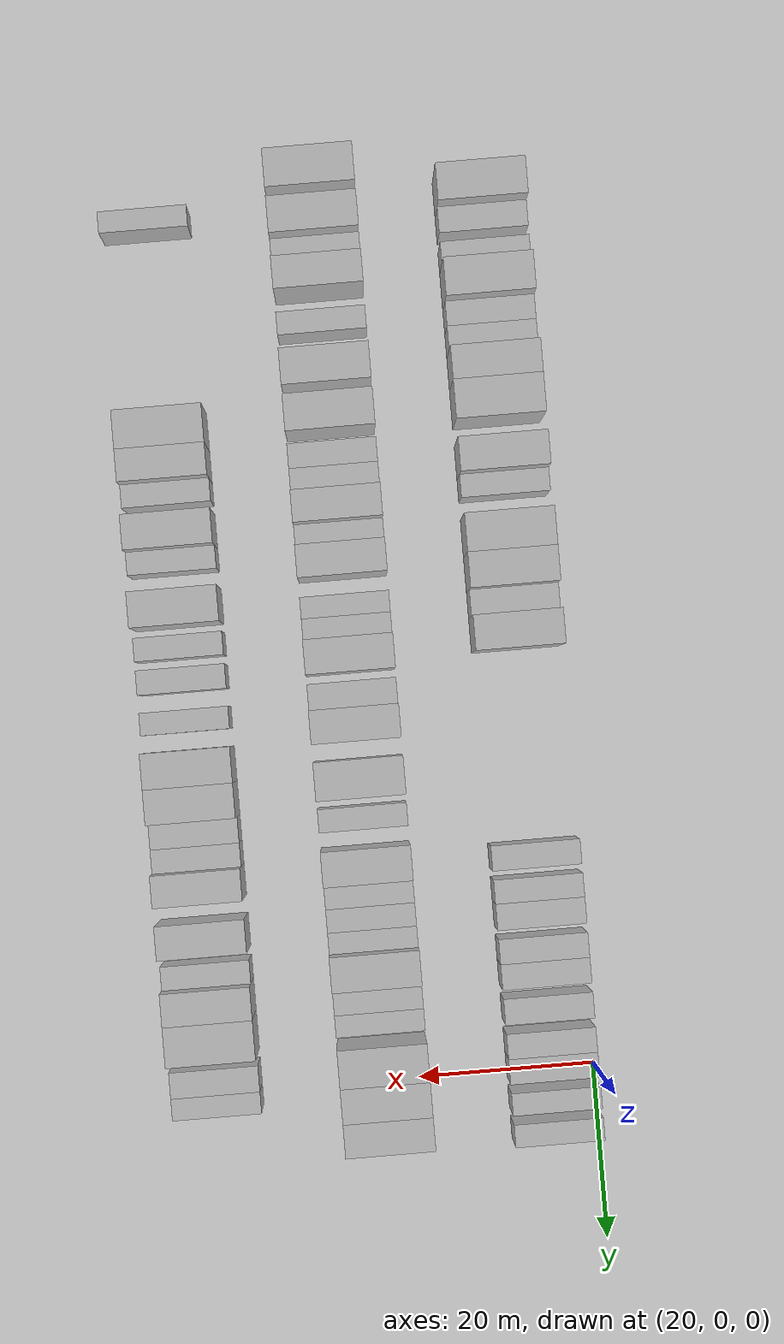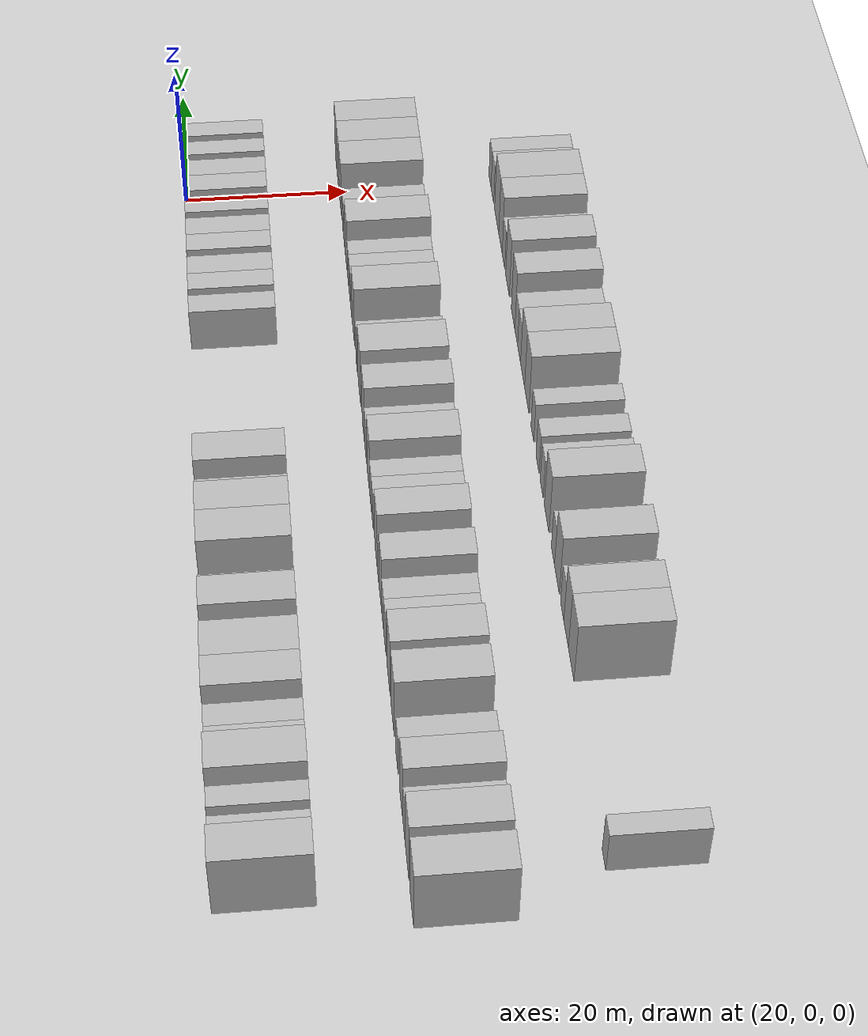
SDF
<sdf version="1.6">
 <world name="default">
  <include><name>ground_plane_1</name><uri>model://HANNAS_ground_plane</uri></include>
  <model name="building_61">
   <static>1</static>
   <pose>25.0000 -99.9922 0 0.000000 0.000000 0.000000</pose>
   <link name="link">
    <pose>0 0 4.50 0 0 0</pose>
    <collision name="collision"><geometry><box><size>10.0000 4.1372 9.0000</size></box></geometry></collision>
    <visual name="visual">
     <cast_shadows>0</cast_shadows>
     <geometry><box><size>10.0000 4.1372 9.0000</size></box></geometry>
     <material>
      <script>
       <uri>model://HANNAS_wall/materials/scripts</uri>
       <uri>model://HANNAS_wall/materials/textures</uri>
       <name>vrc/HANNAS_wall</name>
      </script>
     </material>
    </visual>
   </link>
  </model>
  <model name="building_62">
   <static>1</static>
   <pose>25.0000 -96.4658 0 0.000000 0.000000 0.000000</pose>
   <link name="link">
    <pose>0 0 3.00 0 0 0</pose>
    <collision name="collision"><geometry><box><size>10.0000 2.9156 6.0000</size></box></geometry></collision>
    <visual name="visual">
     <cast_shadows>0</cast_shadows>
     <geometry><box><size>10.0000 2.9156 6.0000</size></box></geometry>
     <material>
      <script>
       <uri>model://HANNAS_wall/materials/scripts</uri>
       <uri>model://HANNAS_wall/materials/textures</uri>
       <name>vrc/HANNAS_wall</name>
      </script>
     </material>
    </visual>
   </link>
  </model>
  <model name="building_63">
   <static>1</static>
   <pose>25.0000 -92.8031 0 0.000000 0.000000 0.000000</pose>
   <link name="link">
    <pose>0 0 3.00 0 0 0</pose>
    <collision name="collision"><geometry><box><size>10.0000 2.4098 6.0000</size></box></geometry></collision>
    <visual name="visual">
     <cast_shadows>0</cast_shadows>
     <geometry><box><size>10.0000 2.4098 6.0000</size></box></geometry>
     <material>
      <script>
       <uri>model://HANNAS_wall/materials/scripts</uri>
       <uri>model://HANNAS_wall/materials/textures</uri>
       <name>vrc/HANNAS_wall</name>
      </script>
     </material>
    </visual>
   </link>
  </model>
  <model name="building_64">
   <static>1</static>
   <pose>25.0000 -89.4570 0 0.000000 0.000000 0.000000</pose>
   <link name="link">
    <pose>0 0 4.50 0 0 0</pose>
    <collision name="collision"><geometry><box><size>10.0000 4.2825 9.0000</size></box></geometry></collision>
    <visual name="visual">
     <cast_shadows>0</cast_shadows>
     <geometry><box><size>10.0000 4.2825 9.0000</size></box></geometry>
     <material>
      <script>
       <uri>model://HANNAS_wall/materials/scripts</uri>
       <uri>model://HANNAS_wall/materials/textures</uri>
       <name>vrc/HANNAS_wall</name>
      </script>
     </material>
    </visual>
   </link>
  </model>
  <model name="building_65">
   <static>1</static>
   <pose>25.0000 -85.9227 0 0.000000 0.000000 0.000000</pose>
   <link name="link">
    <pose>0 0 3.00 0 0 0</pose>
    <collision name="collision"><geometry><box><size>10.0000 2.7860 6.0000</size></box></geometry></collision>
    <visual name="visual">
     <cast_shadows>0</cast_shadows>
     <geometry><box><size>10.0000 2.7860 6.0000</size></box></geometry>
     <material>
      <script>
       <uri>model://HANNAS_wall/materials/scripts</uri>
       <uri>model://HANNAS_wall/materials/textures</uri>
       <name>vrc/HANNAS_wall</name>
      </script>
     </material>
    </visual>
   </link>
  </model>
  <model name="building_66">
   <static>1</static>
   <pose>25.0000 -83.1837 0 0.000000 0.000000 0.000000</pose>
   <link name="link">
    <pose>0 0 3.00 0 0 0</pose>
    <collision name="collision"><geometry><box><size>10.0000 2.6921 6.0000</size></box></geometry></collision>
    <visual name="visual">
     <cast_shadows>0</cast_shadows>
     <geometry><box><size>10.0000 2.6921 6.0000</size></box></geometry>
     <material>
      <script>
       <uri>model://HANNAS_wall/materials/scripts</uri>
       <uri>model://HANNAS_wall/materials/textures</uri>
       <name>vrc/HANNAS_wall</name>
      </script>
     </material>
    </visual>
   </link>
  </model>
  <model name="building_67">
   <static>1</static>
   <pose>25.0000 -79.9527 0 0.000000 0.000000 0.000000</pose>
   <link name="link">
    <pose>0 0 4.50 0 0 0</pose>
    <collision name="collision"><geometry><box><size>10.0000 3.7701 9.0000</size></box></geometry></collision>
    <visual name="visual">
     <cast_shadows>0</cast_shadows>
     <geometry><box><size>10.0000 3.7701 9.0000</size></box></geometry>
     <material>
      <script>
       <uri>model://HANNAS_wall/materials/scripts</uri>
       <uri>model://HANNAS_wall/materials/textures</uri>
       <name>vrc/HANNAS_wall</name>
      </script>
     </material>
    </visual>
   </link>
  </model>
  <model name="building_68">
   <static>1</static>
   <pose>25.0000 -75.8776 0 0.000000 0.000000 0.000000</pose>
   <link name="link">
    <pose>0 0 4.50 0 0 0</pose>
    <collision name="collision"><geometry><box><size>10.0000 4.3800 9.0000</size></box></geometry></collision>
    <visual name="visual">
     <cast_shadows>0</cast_shadows>
     <geometry><box><size>10.0000 4.3800 9.0000</size></box></geometry>
     <material>
      <script>
       <uri>model://HANNAS_wall/materials/scripts</uri>
       <uri>model://HANNAS_wall/materials/textures</uri>
       <name>vrc/HANNAS_wall</name>
      </script>
     </material>
    </visual>
   </link>
  </model>
  <model name="building_69">
   <static>1</static>
   <pose>25.0000 -69.7725 0 0.000000 0.000000 0.000000</pose>
   <link name="link">
    <pose>0 0 4.50 0 0 0</pose>
    <collision name="collision"><geometry><box><size>10.0000 3.8302 9.0000</size></box></geometry></collision>
    <visual name="visual">
     <cast_shadows>0</cast_shadows>
     <geometry><box><size>10.0000 3.8302 9.0000</size></box></geometry>
     <material>
      <script>
       <uri>model://HANNAS_wall/materials/scripts</uri>
       <uri>model://HANNAS_wall/materials/textures</uri>
       <name>vrc/HANNAS_wall</name>
      </script>
     </material>
    </visual>
   </link>
  </model>
  <model name="building_70">
   <static>1</static>
   <pose>25.0000 -66.5474 0 0.000000 0.000000 0.000000</pose>
   <link name="link">
    <pose>0 0 3.00 0 0 0</pose>
    <collision name="collision"><geometry><box><size>10.0000 2.6201 6.0000</size></box></geometry></collision>
    <visual name="visual">
     <cast_shadows>0</cast_shadows>
     <geometry><box><size>10.0000 2.6201 6.0000</size></box></geometry>
     <material>
      <script>
       <uri>model://HANNAS_wall/materials/scripts</uri>
       <uri>model://HANNAS_wall/materials/textures</uri>
       <name>vrc/HANNAS_wall</name>
      </script>
     </material>
    </visual>
   </link>
  </model>
  <model name="building_71">
   <static>1</static>
   <pose>25.0000 -61.0674 0 0.000000 0.000000 0.000000</pose>
   <link name="link">
    <pose>0 0 4.50 0 0 0</pose>
    <collision name="collision"><geometry><box><size>10.0000 4.3399 9.0000</size></box></geometry></collision>
    <visual name="visual">
     <cast_shadows>0</cast_shadows>
     <geometry><box><size>10.0000 4.3399 9.0000</size></box></geometry>
     <material>
      <script>
       <uri>model://HANNAS_wall/materials/scripts</uri>
       <uri>model://HANNAS_wall/materials/textures</uri>
       <name>vrc/HANNAS_wall</name>
      </script>
     </material>
    </visual>
   </link>
  </model>
  <model name="building_72">
   <static>1</static>
   <pose>25.0000 -56.9074 0 0.000000 0.000000 0.000000</pose>
   <link name="link">
    <pose>0 0 4.50 0 0 0</pose>
    <collision name="collision"><geometry><box><size>10.0000 3.9801 9.0000</size></box></geometry></collision>
    <visual name="visual">
     <cast_shadows>0</cast_shadows>
     <geometry><box><size>10.0000 3.9801 9.0000</size></box></geometry>
     <material>
      <script>
       <uri>model://HANNAS_wall/materials/scripts</uri>
       <uri>model://HANNAS_wall/materials/textures</uri>
       <name>vrc/HANNAS_wall</name>
      </script>
     </material>
    </visual>
   </link>
  </model>
  <model name="building_73">
   <static>1</static>
   <pose>25.0000 -53.4187 0 0.000000 0.000000 0.000000</pose>
   <link name="link">
    <pose>0 0 3.00 0 0 0</pose>
    <collision name="collision"><geometry><box><size>10.0000 2.9973 6.0000</size></box></geometry></collision>
    <visual name="visual">
     <cast_shadows>0</cast_shadows>
     <geometry><box><size>10.0000 2.9973 6.0000</size></box></geometry>
     <material>
      <script>
       <uri>model://HANNAS_wall/materials/scripts</uri>
       <uri>model://HANNAS_wall/materials/textures</uri>
       <name>vrc/HANNAS_wall</name>
      </script>
     </material>
    </visual>
   </link>
  </model>
  <model name="building_74">
   <static>1</static>
   <pose>25.0000 -49.9372 0 0.000000 0.000000 0.000000</pose>
   <link name="link">
    <pose>0 0 4.50 0 0 0</pose>
    <collision name="collision"><geometry><box><size>10.0000 3.9659 9.0000</size></box></geometry></collision>
    <visual name="visual">
     <cast_shadows>0</cast_shadows>
     <geometry><box><size>10.0000 3.9659 9.0000</size></box></geometry>
     <material>
      <script>
       <uri>model://HANNAS_wall/materials/scripts</uri>
       <uri>model://HANNAS_wall/materials/textures</uri>
       <name>vrc/HANNAS_wall</name>
      </script>
     </material>
    </visual>
   </link>
  </model>
  <model name="building_75">
   <static>1</static>
   <pose>25.0000 -24.7141 0 0.000000 0.000000 0.000000</pose>
   <link name="link">
    <pose>0 0 3.00 0 0 0</pose>
    <collision name="collision"><geometry><box><size>10.0000 2.8267 6.0000</size></box></geometry></collision>
    <visual name="visual">
     <cast_shadows>0</cast_shadows>
     <geometry><box><size>10.0000 2.8267 6.0000</size></box></geometry>
     <material>
      <script>
       <uri>model://HANNAS_wall/materials/scripts</uri>
       <uri>model://HANNAS_wall/materials/textures</uri>
       <name>vrc/HANNAS_wall</name>
      </script>
     </material>
    </visual>
   </link>
  </model>
  <model name="building_76">
   <static>1</static>
   <pose>25.0000 -20.9443 0 0.000000 0.000000 0.000000</pose>
   <link name="link">
    <pose>0 0 3.00 0 0 0</pose>
    <collision name="collision"><geometry><box><size>10.0000 2.7129 6.0000</size></box></geometry></collision>
    <visual name="visual">
     <cast_shadows>0</cast_shadows>
     <geometry><box><size>10.0000 2.7129 6.0000</size></box></geometry>
     <material>
      <script>
       <uri>model://HANNAS_wall/materials/scripts</uri>
       <uri>model://HANNAS_wall/materials/textures</uri>
       <name>vrc/HANNAS_wall</name>
      </script>
     </material>
    </visual>
   </link>
  </model>
  <model name="building_77">
   <static>1</static>
   <pose>25.0000 -18.1075 0 0.000000 0.000000 0.000000</pose>
   <link name="link">
    <pose>0 0 3.00 0 0 0</pose>
    <collision name="collision"><geometry><box><size>10.0000 2.9607 6.0000</size></box></geometry></collision>
    <visual name="visual">
     <cast_shadows>0</cast_shadows>
     <geometry><box><size>10.0000 2.9607 6.0000</size></box></geometry>
     <material>
      <script>
       <uri>model://HANNAS_wall/materials/scripts</uri>
       <uri>model://HANNAS_wall/materials/textures</uri>
       <name>vrc/HANNAS_wall</name>
      </script>
     </material>
    </visual>
   </link>
  </model>
  <model name="building_78">
   <static>1</static>
   <pose>25.0000 -14.2135 0 0.000000 0.000000 0.000000</pose>
   <link name="link">
    <pose>0 0 3.00 0 0 0</pose>
    <collision name="collision"><geometry><box><size>10.0000 2.8274 6.0000</size></box></geometry></collision>
    <visual name="visual">
     <cast_shadows>0</cast_shadows>
     <geometry><box><size>10.0000 2.8274 6.0000</size></box></geometry>
     <material>
      <script>
       <uri>model://HANNAS_wall/materials/scripts</uri>
       <uri>model://HANNAS_wall/materials/textures</uri>
       <name>vrc/HANNAS_wall</name>
      </script>
     </material>
    </visual>
   </link>
  </model>
  <model name="building_79">
   <static>1</static>
   <pose>25.0000 -11.3619 0 0.000000 0.000000 0.000000</pose>
   <link name="link">
    <pose>0 0 3.00 0 0 0</pose>
    <collision name="collision"><geometry><box><size>10.0000 2.8756 6.0000</size></box></geometry></collision>
    <visual name="visual">
     <cast_shadows>0</cast_shadows>
     <geometry><box><size>10.0000 2.8756 6.0000</size></box></geometry>
     <material>
      <script>
       <uri>model://HANNAS_wall/materials/scripts</uri>
       <uri>model://HANNAS_wall/materials/textures</uri>
       <name>vrc/HANNAS_wall</name>
      </script>
     </material>
    </visual>
   </link>
  </model>
  <model name="building_80">
   <static>1</static>
   <pose>25.0000 -7.4598 0 0.000000 0.000000 0.000000</pose>
   <link name="link">
    <pose>0 0 3.00 0 0 0</pose>
    <collision name="collision"><geometry><box><size>10.0000 2.9285 6.0000</size></box></geometry></collision>
    <visual name="visual">
     <cast_shadows>0</cast_shadows>
     <geometry><box><size>10.0000 2.9285 6.0000</size></box></geometry>
     <material>
      <script>
       <uri>model://HANNAS_wall/materials/scripts</uri>
       <uri>model://HANNAS_wall/materials/textures</uri>
       <name>vrc/HANNAS_wall</name>
      </script>
     </material>
    </visual>
   </link>
  </model>
  <model name="building_81">
   <static>1</static>
   <pose>25.0000 -3.5816 0 0.000000 0.000000 0.000000</pose>
   <link name="link">
    <pose>0 0 3.00 0 0 0</pose>
    <collision name="collision"><geometry><box><size>10.0000 2.8280 6.0000</size></box></geometry></collision>
    <visual name="visual">
     <cast_shadows>0</cast_shadows>
     <geometry><box><size>10.0000 2.8280 6.0000</size></box></geometry>
     <material>
      <script>
       <uri>model://HANNAS_wall/materials/scripts</uri>
       <uri>model://HANNAS_wall/materials/textures</uri>
       <name>vrc/HANNAS_wall</name>
      </script>
     </material>
    </visual>
   </link>
  </model>
  <model name="building_82">
   <static>1</static>
   <pose>25.0000 -0.7531 0 0.000000 0.000000 0.000000</pose>
   <link name="link">
    <pose>0 0 3.00 0 0 0</pose>
    <collision name="collision"><geometry><box><size>10.0000 2.8289 6.0000</size></box></geometry></collision>
    <visual name="visual">
     <cast_shadows>0</cast_shadows>
     <geometry><box><size>10.0000 2.8289 6.0000</size></box></geometry>
     <material>
      <script>
       <uri>model://HANNAS_wall/materials/scripts</uri>
       <uri>model://HANNAS_wall/materials/textures</uri>
       <name>vrc/HANNAS_wall</name>
      </script>
     </material>
    </visual>
   </link>
  </model>
  <model name="building_83">
   <static>1</static>
   <pose>25.0000 2.9160 0 0.000000 0.000000 0.000000</pose>
   <link name="link">
    <pose>0 0 3.00 0 0 0</pose>
    <collision name="collision"><geometry><box><size>10.0000 2.5093 6.0000</size></box></geometry></collision>
    <visual name="visual">
     <cast_shadows>0</cast_shadows>
     <geometry><box><size>10.0000 2.5093 6.0000</size></box></geometry>
     <material>
      <script>
       <uri>model://HANNAS_wall/materials/scripts</uri>
       <uri>model://HANNAS_wall/materials/textures</uri>
       <name>vrc/HANNAS_wall</name>
      </script>
     </material>
    </visual>
   </link>
  </model>
  <model name="building_84">
   <static>1</static>
   <pose>25.0000 6.4420 0 0.000000 0.000000 0.000000</pose>
   <link name="link">
    <pose>0 0 3.00 0 0 0</pose>
    <collision name="collision"><geometry><box><size>10.0000 2.5426 6.0000</size></box></geometry></collision>
    <visual name="visual">
     <cast_shadows>0</cast_shadows>
     <geometry><box><size>10.0000 2.5426 6.0000</size></box></geometry>
     <material>
      <script>
       <uri>model://HANNAS_wall/materials/scripts</uri>
       <uri>model://HANNAS_wall/materials/textures</uri>
       <name>vrc/HANNAS_wall</name>
      </script>
     </material>
    </visual>
   </link>
  </model>
  <model name="building_235">
   <static>1</static>
   <pose>44.0000 -103.1138 0 0.000000 0.000000 0.000000</pose>
   <link name="link">
    <pose>0 0 4.50 0 0 0</pose>
    <collision name="collision"><geometry><box><size>10.0000 4.2926 9.0000</size></box></geometry></collision>
    <visual name="visual">
     <cast_shadows>0</cast_shadows>
     <geometry><box><size>10.0000 4.2926 9.0000</size></box></geometry>
     <material>
      <script>
       <uri>model://HANNAS_wall/materials/scripts</uri>
       <uri>model://HANNAS_wall/materials/textures</uri>
       <name>vrc/HANNAS_wall</name>
      </script>
     </material>
    </visual>
   </link>
  </model>
  <model name="building_236">
   <static>1</static>
   <pose>44.0000 -97.9394 0 0.000000 0.000000 0.000000</pose>
   <link name="link">
    <pose>0 0 4.50 0 0 0</pose>
    <collision name="collision"><geometry><box><size>10.0000 4.0561 9.0000</size></box></geometry></collision>
    <visual name="visual">
     <cast_shadows>0</cast_shadows>
     <geometry><box><size>10.0000 4.0561 9.0000</size></box></geometry>
     <material>
      <script>
       <uri>model://HANNAS_wall/materials/scripts</uri>
       <uri>model://HANNAS_wall/materials/textures</uri>
       <name>vrc/HANNAS_wall</name>
      </script>
     </material>
    </visual>
   </link>
  </model>
  <model name="building_237">
   <static>1</static>
   <pose>44.0000 -94.6155 0 0.000000 0.000000 0.000000</pose>
   <link name="link">
    <pose>0 0 3.00 0 0 0</pose>
    <collision name="collision"><geometry><box><size>10.0000 2.5917 6.0000</size></box></geometry></collision>
    <visual name="visual">
     <cast_shadows>0</cast_shadows>
     <geometry><box><size>10.0000 2.5917 6.0000</size></box></geometry>
     <material>
      <script>
       <uri>model://HANNAS_wall/materials/scripts</uri>
       <uri>model://HANNAS_wall/materials/textures</uri>
       <name>vrc/HANNAS_wall</name>
      </script>
     </material>
    </visual>
   </link>
  </model>
  <model name="building_238">
   <static>1</static>
   <pose>44.0000 -91.5014 0 0.000000 0.000000 0.000000</pose>
   <link name="link">
    <pose>0 0 4.50 0 0 0</pose>
    <collision name="collision"><geometry><box><size>10.0000 3.6364 9.0000</size></box></geometry></collision>
    <visual name="visual">
     <cast_shadows>0</cast_shadows>
     <geometry><box><size>10.0000 3.6364 9.0000</size></box></geometry>
     <material>
      <script>
       <uri>model://HANNAS_wall/materials/scripts</uri>
       <uri>model://HANNAS_wall/materials/textures</uri>
       <name>vrc/HANNAS_wall</name>
      </script>
     </material>
    </visual>
   </link>
  </model>
  <model name="building_239">
   <static>1</static>
   <pose>44.0000 -86.3907 0 0.000000 0.000000 0.000000</pose>
   <link name="link">
    <pose>0 0 3.00 0 0 0</pose>
    <collision name="collision"><geometry><box><size>10.0000 2.5850 6.0000</size></box></geometry></collision>
    <visual name="visual">
     <cast_shadows>0</cast_shadows>
     <geometry><box><size>10.0000 2.5850 6.0000</size></box></geometry>
     <material>
      <script>
       <uri>model://HANNAS_wall/materials/scripts</uri>
       <uri>model://HANNAS_wall/materials/textures</uri>
       <name>vrc/HANNAS_wall</name>
      </script>
     </material>
    </visual>
   </link>
  </model>
  <model name="building_240">
   <static>1</static>
   <pose>44.0000 -81.0617 0 0.000000 0.000000 0.000000</pose>
   <link name="link">
    <pose>0 0 4.50 0 0 0</pose>
    <collision name="collision"><geometry><box><size>10.0000 4.0732 9.0000</size></box></geometry></collision>
    <visual name="visual">
     <cast_shadows>0</cast_shadows>
     <geometry><box><size>10.0000 4.0732 9.0000</size></box></geometry>
     <material>
      <script>
       <uri>model://HANNAS_wall/materials/scripts</uri>
       <uri>model://HANNAS_wall/materials/textures</uri>
       <name>vrc/HANNAS_wall</name>
      </script>
     </material>
    </visual>
   </link>
  </model>
  <model name="building_241">
   <static>1</static>
   <pose>44.0000 -75.9547 0 0.000000 0.000000 0.000000</pose>
   <link name="link">
    <pose>0 0 4.50 0 0 0</pose>
    <collision name="collision"><geometry><box><size>10.0000 4.1408 9.0000</size></box></geometry></collision>
    <visual name="visual">
     <cast_shadows>0</cast_shadows>
     <geometry><box><size>10.0000 4.1408 9.0000</size></box></geometry>
     <material>
      <script>
       <uri>model://HANNAS_wall/materials/scripts</uri>
       <uri>model://HANNAS_wall/materials/textures</uri>
       <name>vrc/HANNAS_wall</name>
      </script>
     </material>
    </visual>
   </link>
  </model>
  <model name="building_242">
   <static>1</static>
   <pose>44.0000 -71.4870 0 0.000000 0.000000 0.000000</pose>
   <link name="link">
    <pose>0 0 3.00 0 0 0</pose>
    <collision name="collision"><geometry><box><size>10.0000 2.7945 6.0000</size></box></geometry></collision>
    <visual name="visual">
     <cast_shadows>0</cast_shadows>
     <geometry><box><size>10.0000 2.7945 6.0000</size></box></geometry>
     <material>
      <script>
       <uri>model://HANNAS_wall/materials/scripts</uri>
       <uri>model://HANNAS_wall/materials/textures</uri>
       <name>vrc/HANNAS_wall</name>
      </script>
     </material>
    </visual>
   </link>
  </model>
  <model name="building_243">
   <static>1</static>
   <pose>44.0000 -68.7344 0 0.000000 0.000000 0.000000</pose>
   <link name="link">
    <pose>0 0 3.00 0 0 0</pose>
    <collision name="collision"><geometry><box><size>10.0000 2.7108 6.0000</size></box></geometry></collision>
    <visual name="visual">
     <cast_shadows>0</cast_shadows>
     <geometry><box><size>10.0000 2.7108 6.0000</size></box></geometry>
     <material>
      <script>
       <uri>model://HANNAS_wall/materials/scripts</uri>
       <uri>model://HANNAS_wall/materials/textures</uri>
       <name>vrc/HANNAS_wall</name>
      </script>
     </material>
    </visual>
   </link>
  </model>
  <model name="building_244">
   <static>1</static>
   <pose>44.0000 -65.5699 0 0.000000 0.000000 0.000000</pose>
   <link name="link">
    <pose>0 0 4.50 0 0 0</pose>
    <collision name="collision"><geometry><box><size>10.0000 3.6183 9.0000</size></box></geometry></collision>
    <visual name="visual">
     <cast_shadows>0</cast_shadows>
     <geometry><box><size>10.0000 3.6183 9.0000</size></box></geometry>
     <material>
      <script>
       <uri>model://HANNAS_wall/materials/scripts</uri>
       <uri>model://HANNAS_wall/materials/textures</uri>
       <name>vrc/HANNAS_wall</name>
      </script>
     </material>
    </visual>
   </link>
  </model>
  <model name="building_245">
   <static>1</static>
   <pose>44.0000 -62.5267 0 0.000000 0.000000 0.000000</pose>
   <link name="link">
    <pose>0 0 3.00 0 0 0</pose>
    <collision name="collision"><geometry><box><size>10.0000 2.4680 6.0000</size></box></geometry></collision>
    <visual name="visual">
     <cast_shadows>0</cast_shadows>
     <geometry><box><size>10.0000 2.4680 6.0000</size></box></geometry>
     <material>
      <script>
       <uri>model://HANNAS_wall/materials/scripts</uri>
       <uri>model://HANNAS_wall/materials/textures</uri>
       <name>vrc/HANNAS_wall</name>
      </script>
     </material>
    </visual>
   </link>
  </model>
  <model name="building_246">
   <static>1</static>
   <pose>44.0000 -59.4521 0 0.000000 0.000000 0.000000</pose>
   <link name="link">
    <pose>0 0 4.50 0 0 0</pose>
    <collision name="collision"><geometry><box><size>10.0000 3.6812 9.0000</size></box></geometry></collision>
    <visual name="visual">
     <cast_shadows>0</cast_shadows>
     <geometry><box><size>10.0000 3.6812 9.0000</size></box></geometry>
     <material>
      <script>
       <uri>model://HANNAS_wall/materials/scripts</uri>
       <uri>model://HANNAS_wall/materials/textures</uri>
       <name>vrc/HANNAS_wall</name>
      </script>
     </material>
    </visual>
   </link>
  </model>
  <model name="building_247">
   <static>1</static>
   <pose>44.0000 -54.3995 0 0.000000 0.000000 0.000000</pose>
   <link name="link">
    <pose>0 0 3.00 0 0 0</pose>
    <collision name="collision"><geometry><box><size>10.0000 2.4240 6.0000</size></box></geometry></collision>
    <visual name="visual">
     <cast_shadows>0</cast_shadows>
     <geometry><box><size>10.0000 2.4240 6.0000</size></box></geometry>
     <material>
      <script>
       <uri>model://HANNAS_wall/materials/scripts</uri>
       <uri>model://HANNAS_wall/materials/textures</uri>
       <name>vrc/HANNAS_wall</name>
      </script>
     </material>
    </visual>
   </link>
  </model>
  <model name="building_248">
   <static>1</static>
   <pose>44.0000 -51.9648 0 0.000000 0.000000 0.000000</pose>
   <link name="link">
    <pose>0 0 3.00 0 0 0</pose>
    <collision name="collision"><geometry><box><size>10.0000 2.4454 6.0000</size></box></geometry></collision>
    <visual name="visual">
     <cast_shadows>0</cast_shadows>
     <geometry><box><size>10.0000 2.4454 6.0000</size></box></geometry>
     <material>
      <script>
       <uri>model://HANNAS_wall/materials/scripts</uri>
       <uri>model://HANNAS_wall/materials/textures</uri>
       <name>vrc/HANNAS_wall</name>
      </script>
     </material>
    </visual>
   </link>
  </model>
  <model name="building_249">
   <static>1</static>
   <pose>44.0000 -48.7919 0 0.000000 0.000000 0.000000</pose>
   <link name="link">
    <pose>0 0 4.50 0 0 0</pose>
    <collision name="collision"><geometry><box><size>10.0000 3.9004 9.0000</size></box></geometry></collision>
    <visual name="visual">
     <cast_shadows>0</cast_shadows>
     <geometry><box><size>10.0000 3.9004 9.0000</size></box></geometry>
     <material>
      <script>
       <uri>model://HANNAS_wall/materials/scripts</uri>
       <uri>model://HANNAS_wall/materials/textures</uri>
       <name>vrc/HANNAS_wall</name>
      </script>
     </material>
    </visual>
   </link>
  </model>
  <model name="building_250">
   <static>1</static>
   <pose>44.0000 -44.3655 0 0.000000 0.000000 0.000000</pose>
   <link name="link">
    <pose>0 0 3.00 0 0 0</pose>
    <collision name="collision"><geometry><box><size>10.0000 2.9524 6.0000</size></box></geometry></collision>
    <visual name="visual">
     <cast_shadows>0</cast_shadows>
     <geometry><box><size>10.0000 2.9524 6.0000</size></box></geometry>
     <material>
      <script>
       <uri>model://HANNAS_wall/materials/scripts</uri>
       <uri>model://HANNAS_wall/materials/textures</uri>
       <name>vrc/HANNAS_wall</name>
      </script>
     </material>
    </visual>
   </link>
  </model>
  <model name="building_251">
   <static>1</static>
   <pose>44.0000 -40.9988 0 0.000000 0.000000 0.000000</pose>
   <link name="link">
    <pose>0 0 4.50 0 0 0</pose>
    <collision name="collision"><geometry><box><size>10.0000 3.7809 9.0000</size></box></geometry></collision>
    <visual name="visual">
     <cast_shadows>0</cast_shadows>
     <geometry><box><size>10.0000 3.7809 9.0000</size></box></geometry>
     <material>
      <script>
       <uri>model://HANNAS_wall/materials/scripts</uri>
       <uri>model://HANNAS_wall/materials/textures</uri>
       <name>vrc/HANNAS_wall</name>
      </script>
     </material>
    </visual>
   </link>
  </model>
  <model name="building_252">
   <static>1</static>
   <pose>44.0000 -34.9463 0 0.000000 0.000000 0.000000</pose>
   <link name="link">
    <pose>0 0 4.50 0 0 0</pose>
    <collision name="collision"><geometry><box><size>10.0000 4.3242 9.0000</size></box></geometry></collision>
    <visual name="visual">
     <cast_shadows>0</cast_shadows>
     <geometry><box><size>10.0000 4.3242 9.0000</size></box></geometry>
     <material>
      <script>
       <uri>model://HANNAS_wall/materials/scripts</uri>
       <uri>model://HANNAS_wall/materials/textures</uri>
       <name>vrc/HANNAS_wall</name>
      </script>
     </material>
    </visual>
   </link>
  </model>
  <model name="building_253">
   <static>1</static>
   <pose>44.0000 -30.4760 0 0.000000 0.000000 0.000000</pose>
   <link name="link">
    <pose>0 0 3.00 0 0 0</pose>
    <collision name="collision"><geometry><box><size>10.0000 2.6163 6.0000</size></box></geometry></collision>
    <visual name="visual">
     <cast_shadows>0</cast_shadows>
     <geometry><box><size>10.0000 2.6163 6.0000</size></box></geometry>
     <material>
      <script>
       <uri>model://HANNAS_wall/materials/scripts</uri>
       <uri>model://HANNAS_wall/materials/textures</uri>
       <name>vrc/HANNAS_wall</name>
      </script>
     </material>
    </visual>
   </link>
  </model>
  <model name="building_254">
   <static>1</static>
   <pose>44.0000 -25.1938 0 0.000000 0.000000 0.000000</pose>
   <link name="link">
    <pose>0 0 4.50 0 0 0</pose>
    <collision name="collision"><geometry><box><size>10.0000 3.9481 9.0000</size></box></geometry></collision>
    <visual name="visual">
     <cast_shadows>0</cast_shadows>
     <geometry><box><size>10.0000 3.9481 9.0000</size></box></geometry>
     <material>
      <script>
       <uri>model://HANNAS_wall/materials/scripts</uri>
       <uri>model://HANNAS_wall/materials/textures</uri>
       <name>vrc/HANNAS_wall</name>
      </script>
     </material>
    </visual>
   </link>
  </model>
  <model name="building_255">
   <static>1</static>
   <pose>44.0000 -21.8793 0 0.000000 0.000000 0.000000</pose>
   <link name="link">
    <pose>0 0 3.00 0 0 0</pose>
    <collision name="collision"><geometry><box><size>10.0000 2.6810 6.0000</size></box></geometry></collision>
    <visual name="visual">
     <cast_shadows>0</cast_shadows>
     <geometry><box><size>10.0000 2.6810 6.0000</size></box></geometry>
     <material>
      <script>
       <uri>model://HANNAS_wall/materials/scripts</uri>
       <uri>model://HANNAS_wall/materials/textures</uri>
       <name>vrc/HANNAS_wall</name>
      </script>
     </material>
    </visual>
   </link>
  </model>
  <model name="building_256">
   <static>1</static>
   <pose>44.0000 -19.2261 0 0.000000 0.000000 0.000000</pose>
   <link name="link">
    <pose>0 0 3.00 0 0 0</pose>
    <collision name="collision"><geometry><box><size>10.0000 2.6255 6.0000</size></box></geometry></collision>
    <visual name="visual">
     <cast_shadows>0</cast_shadows>
     <geometry><box><size>10.0000 2.6255 6.0000</size></box></geometry>
     <material>
      <script>
       <uri>model://HANNAS_wall/materials/scripts</uri>
       <uri>model://HANNAS_wall/materials/textures</uri>
       <name>vrc/HANNAS_wall</name>
      </script>
     </material>
    </visual>
   </link>
  </model>
  <model name="building_257">
   <static>1</static>
   <pose>44.0000 -16.7119 0 0.000000 0.000000 0.000000</pose>
   <link name="link">
    <pose>0 0 3.00 0 0 0</pose>
    <collision name="collision"><geometry><box><size>10.0000 2.4028 6.0000</size></box></geometry></collision>
    <visual name="visual">
     <cast_shadows>0</cast_shadows>
     <geometry><box><size>10.0000 2.4028 6.0000</size></box></geometry>
     <material>
      <script>
       <uri>model://HANNAS_wall/materials/scripts</uri>
       <uri>model://HANNAS_wall/materials/textures</uri>
       <name>vrc/HANNAS_wall</name>
      </script>
     </material>
    </visual>
   </link>
  </model>
  <model name="building_258">
   <static>1</static>
   <pose>44.0000 -13.5210 0 0.000000 0.000000 0.000000</pose>
   <link name="link">
    <pose>0 0 4.50 0 0 0</pose>
    <collision name="collision"><geometry><box><size>10.0000 3.9791 9.0000</size></box></geometry></collision>
    <visual name="visual">
     <cast_shadows>0</cast_shadows>
     <geometry><box><size>10.0000 3.9791 9.0000</size></box></geometry>
     <material>
      <script>
       <uri>model://HANNAS_wall/materials/scripts</uri>
       <uri>model://HANNAS_wall/materials/textures</uri>
       <name>vrc/HANNAS_wall</name>
      </script>
     </material>
    </visual>
   </link>
  </model>
  <model name="building_259">
   <static>1</static>
   <pose>44.0000 -10.0877 0 0.000000 0.000000 0.000000</pose>
   <link name="link">
    <pose>0 0 3.00 0 0 0</pose>
    <collision name="collision"><geometry><box><size>10.0000 2.8873 6.0000</size></box></geometry></collision>
    <visual name="visual">
     <cast_shadows>0</cast_shadows>
     <geometry><box><size>10.0000 2.8873 6.0000</size></box></geometry>
     <material>
      <script>
       <uri>model://HANNAS_wall/materials/scripts</uri>
       <uri>model://HANNAS_wall/materials/textures</uri>
       <name>vrc/HANNAS_wall</name>
      </script>
     </material>
    </visual>
   </link>
  </model>
  <model name="building_260">
   <static>1</static>
   <pose>44.0000 -7.4192 0 0.000000 0.000000 0.000000</pose>
   <link name="link">
    <pose>0 0 3.00 0 0 0</pose>
    <collision name="collision"><geometry><box><size>10.0000 2.4499 6.0000</size></box></geometry></collision>
    <visual name="visual">
     <cast_shadows>0</cast_shadows>
     <geometry><box><size>10.0000 2.4499 6.0000</size></box></geometry>
     <material>
      <script>
       <uri>model://HANNAS_wall/materials/scripts</uri>
       <uri>model://HANNAS_wall/materials/textures</uri>
       <name>vrc/HANNAS_wall</name>
      </script>
     </material>
    </visual>
   </link>
  </model>
  <model name="building_261">
   <static>1</static>
   <pose>44.0000 -3.0409 0 0.000000 0.000000 0.000000</pose>
   <link name="link">
    <pose>0 0 4.50 0 0 0</pose>
    <collision name="collision"><geometry><box><size>10.0000 4.3067 9.0000</size></box></geometry></collision>
    <visual name="visual">
     <cast_shadows>0</cast_shadows>
     <geometry><box><size>10.0000 4.3067 9.0000</size></box></geometry>
     <material>
      <script>
       <uri>model://HANNAS_wall/materials/scripts</uri>
       <uri>model://HANNAS_wall/materials/textures</uri>
       <name>vrc/HANNAS_wall</name>
      </script>
     </material>
    </visual>
   </link>
  </model>
  <model name="building_262">
   <static>1</static>
   <pose>44.0000 1.0598 0 0.000000 0.000000 0.000000</pose>
   <link name="link">
    <pose>0 0 4.50 0 0 0</pose>
    <collision name="collision"><geometry><box><size>10.0000 3.8946 9.0000</size></box></geometry></collision>
    <visual name="visual">
     <cast_shadows>0</cast_shadows>
     <geometry><box><size>10.0000 3.8946 9.0000</size></box></geometry>
     <material>
      <script>
       <uri>model://HANNAS_wall/materials/scripts</uri>
       <uri>model://HANNAS_wall/materials/textures</uri>
       <name>vrc/HANNAS_wall</name>
      </script>
     </material>
    </visual>
   </link>
  </model>
  <model name="building_263">
   <static>1</static>
   <pose>44.0000 4.8701 0 0.000000 0.000000 0.000000</pose>
   <link name="link">
    <pose>0 0 4.50 0 0 0</pose>
    <collision name="collision"><geometry><box><size>10.0000 3.7260 9.0000</size></box></geometry></collision>
    <visual name="visual">
     <cast_shadows>0</cast_shadows>
     <geometry><box><size>10.0000 3.7260 9.0000</size></box></geometry>
     <material>
      <script>
       <uri>model://HANNAS_wall/materials/scripts</uri>
       <uri>model://HANNAS_wall/materials/textures</uri>
       <name>vrc/HANNAS_wall</name>
      </script>
     </material>
    </visual>
   </link>
  </model>
  <model name="building_411">
   <static>1</static>
   <pose>63.0000 -99.3310 0 0.000000 0.000000 0.000000</pose>
   <link name="link">
    <pose>0 0 3.00 0 0 0</pose>
    <collision name="collision"><geometry><box><size>10.0000 2.4071 6.0000</size></box></geometry></collision>
    <visual name="visual">
     <cast_shadows>0</cast_shadows>
     <geometry><box><size>10.0000 2.4071 6.0000</size></box></geometry>
     <material>
      <script>
       <uri>model://HANNAS_wall/materials/scripts</uri>
       <uri>model://HANNAS_wall/materials/textures</uri>
       <name>vrc/HANNAS_wall</name>
      </script>
     </material>
    </visual>
   </link>
  </model>
  <model name="building_412">
   <static>1</static>
   <pose>63.0000 -75.6290 0 0.000000 0.000000 0.000000</pose>
   <link name="link">
    <pose>0 0 4.50 0 0 0</pose>
    <collision name="collision"><geometry><box><size>10.0000 4.3323 9.0000</size></box></geometry></collision>
    <visual name="visual">
     <cast_shadows>0</cast_shadows>
     <geometry><box><size>10.0000 4.3323 9.0000</size></box></geometry>
     <material>
      <script>
       <uri>model://HANNAS_wall/materials/scripts</uri>
       <uri>model://HANNAS_wall/materials/textures</uri>
       <name>vrc/HANNAS_wall</name>
      </script>
     </material>
    </visual>
   </link>
  </model>
  <model name="building_413">
   <static>1</static>
   <pose>63.0000 -71.6511 0 0.000000 0.000000 0.000000</pose>
   <link name="link">
    <pose>0 0 4.50 0 0 0</pose>
    <collision name="collision"><geometry><box><size>10.0000 3.6237 9.0000</size></box></geometry></collision>
    <visual name="visual">
     <cast_shadows>0</cast_shadows>
     <geometry><box><size>10.0000 3.6237 9.0000</size></box></geometry>
     <material>
      <script>
       <uri>model://HANNAS_wall/materials/scripts</uri>
       <uri>model://HANNAS_wall/materials/textures</uri>
       <name>vrc/HANNAS_wall</name>
      </script>
     </material>
    </visual>
   </link>
  </model>
  <model name="building_414">
   <static>1</static>
   <pose>63.0000 -68.5302 0 0.000000 0.000000 0.000000</pose>
   <link name="link">
    <pose>0 0 3.00 0 0 0</pose>
    <collision name="collision"><geometry><box><size>10.0000 2.6180 6.0000</size></box></geometry></collision>
    <visual name="visual">
     <cast_shadows>0</cast_shadows>
     <geometry><box><size>10.0000 2.6180 6.0000</size></box></geometry>
     <material>
      <script>
       <uri>model://HANNAS_wall/materials/scripts</uri>
       <uri>model://HANNAS_wall/materials/textures</uri>
       <name>vrc/HANNAS_wall</name>
      </script>
     </material>
    </visual>
   </link>
  </model>
  <model name="building_415">
   <static>1</static>
   <pose>63.0000 -64.2441 0 0.000000 0.000000 0.000000</pose>
   <link name="link">
    <pose>0 0 4.50 0 0 0</pose>
    <collision name="collision"><geometry><box><size>10.0000 3.9542 9.0000</size></box></geometry></collision>
    <visual name="visual">
     <cast_shadows>0</cast_shadows>
     <geometry><box><size>10.0000 3.9542 9.0000</size></box></geometry>
     <material>
      <script>
       <uri>model://HANNAS_wall/materials/scripts</uri>
       <uri>model://HANNAS_wall/materials/textures</uri>
       <name>vrc/HANNAS_wall</name>
      </script>
     </material>
    </visual>
   </link>
  </model>
  <model name="building_416">
   <static>1</static>
   <pose>63.0000 -60.9572 0 0.000000 0.000000 0.000000</pose>
   <link name="link">
    <pose>0 0 3.00 0 0 0</pose>
    <collision name="collision"><geometry><box><size>10.0000 2.6196 6.0000</size></box></geometry></collision>
    <visual name="visual">
     <cast_shadows>0</cast_shadows>
     <geometry><box><size>10.0000 2.6196 6.0000</size></box></geometry>
     <material>
      <script>
       <uri>model://HANNAS_wall/materials/scripts</uri>
       <uri>model://HANNAS_wall/materials/textures</uri>
       <name>vrc/HANNAS_wall</name>
      </script>
     </material>
    </visual>
   </link>
  </model>
  <model name="building_417">
   <static>1</static>
   <pose>63.0000 -55.6293 0 0.000000 0.000000 0.000000</pose>
   <link name="link">
    <pose>0 0 4.50 0 0 0</pose>
    <collision name="collision"><geometry><box><size>10.0000 4.0363 9.0000</size></box></geometry></collision>
    <visual name="visual">
     <cast_shadows>0</cast_shadows>
     <geometry><box><size>10.0000 4.0363 9.0000</size></box></geometry>
     <material>
      <script>
       <uri>model://HANNAS_wall/materials/scripts</uri>
       <uri>model://HANNAS_wall/materials/textures</uri>
       <name>vrc/HANNAS_wall</name>
      </script>
     </material>
    </visual>
   </link>
  </model>
  <model name="building_418">
   <static>1</static>
   <pose>63.0000 -51.2866 0 0.000000 0.000000 0.000000</pose>
   <link name="link">
    <pose>0 0 3.00 0 0 0</pose>
    <collision name="collision"><geometry><box><size>10.0000 2.6491 6.0000</size></box></geometry></collision>
    <visual name="visual">
     <cast_shadows>0</cast_shadows>
     <geometry><box><size>10.0000 2.6491 6.0000</size></box></geometry>
     <material>
      <script>
       <uri>model://HANNAS_wall/materials/scripts</uri>
       <uri>model://HANNAS_wall/materials/textures</uri>
       <name>vrc/HANNAS_wall</name>
      </script>
     </material>
    </visual>
   </link>
  </model>
  <model name="building_419">
   <static>1</static>
   <pose>63.0000 -47.5744 0 0.000000 0.000000 0.000000</pose>
   <link name="link">
    <pose>0 0 3.00 0 0 0</pose>
    <collision name="collision"><geometry><box><size>10.0000 2.7754 6.0000</size></box></geometry></collision>
    <visual name="visual">
     <cast_shadows>0</cast_shadows>
     <geometry><box><size>10.0000 2.7754 6.0000</size></box></geometry>
     <material>
      <script>
       <uri>model://HANNAS_wall/materials/scripts</uri>
       <uri>model://HANNAS_wall/materials/textures</uri>
       <name>vrc/HANNAS_wall</name>
      </script>
     </material>
    </visual>
   </link>
  </model>
  <model name="building_420">
   <static>1</static>
   <pose>63.0000 -42.9195 0 0.000000 0.000000 0.000000</pose>
   <link name="link">
    <pose>0 0 3.00 0 0 0</pose>
    <collision name="collision"><geometry><box><size>10.0000 2.5342 6.0000</size></box></geometry></collision>
    <visual name="visual">
     <cast_shadows>0</cast_shadows>
     <geometry><box><size>10.0000 2.5342 6.0000</size></box></geometry>
     <material>
      <script>
       <uri>model://HANNAS_wall/materials/scripts</uri>
       <uri>model://HANNAS_wall/materials/textures</uri>
       <name>vrc/HANNAS_wall</name>
      </script>
     </material>
    </visual>
   </link>
  </model>
  <model name="building_421">
   <static>1</static>
   <pose>63.0000 -37.6468 0 0.000000 0.000000 0.000000</pose>
   <link name="link">
    <pose>0 0 4.50 0 0 0</pose>
    <collision name="collision"><geometry><box><size>10.0000 4.0112 9.0000</size></box></geometry></collision>
    <visual name="visual">
     <cast_shadows>0</cast_shadows>
     <geometry><box><size>10.0000 4.0112 9.0000</size></box></geometry>
     <material>
      <script>
       <uri>model://HANNAS_wall/materials/scripts</uri>
       <uri>model://HANNAS_wall/materials/textures</uri>
       <name>vrc/HANNAS_wall</name>
      </script>
     </material>
    </visual>
   </link>
  </model>
  <model name="building_422">
   <static>1</static>
   <pose>63.0000 -33.6801 0 0.000000 0.000000 0.000000</pose>
   <link name="link">
    <pose>0 0 4.50 0 0 0</pose>
    <collision name="collision"><geometry><box><size>10.0000 3.9223 9.0000</size></box></geometry></collision>
    <visual name="visual">
     <cast_shadows>0</cast_shadows>
     <geometry><box><size>10.0000 3.9223 9.0000</size></box></geometry>
     <material>
      <script>
       <uri>model://HANNAS_wall/materials/scripts</uri>
       <uri>model://HANNAS_wall/materials/textures</uri>
       <name>vrc/HANNAS_wall</name>
      </script>
     </material>
    </visual>
   </link>
  </model>
  <model name="building_423">
   <static>1</static>
   <pose>63.0000 -30.2745 0 0.000000 0.000000 0.000000</pose>
   <link name="link">
    <pose>0 0 3.00 0 0 0</pose>
    <collision name="collision"><geometry><box><size>10.0000 2.8890 6.0000</size></box></geometry></collision>
    <visual name="visual">
     <cast_shadows>0</cast_shadows>
     <geometry><box><size>10.0000 2.8890 6.0000</size></box></geometry>
     <material>
      <script>
       <uri>model://HANNAS_wall/materials/scripts</uri>
       <uri>model://HANNAS_wall/materials/textures</uri>
       <name>vrc/HANNAS_wall</name>
      </script>
     </material>
    </visual>
   </link>
  </model>
  <model name="building_424">
   <static>1</static>
   <pose>63.0000 -27.4767 0 0.000000 0.000000 0.000000</pose>
   <link name="link">
    <pose>0 0 3.00 0 0 0</pose>
    <collision name="collision"><geometry><box><size>10.0000 2.7066 6.0000</size></box></geometry></collision>
    <visual name="visual">
     <cast_shadows>0</cast_shadows>
     <geometry><box><size>10.0000 2.7066 6.0000</size></box></geometry>
     <material>
      <script>
       <uri>model://HANNAS_wall/materials/scripts</uri>
       <uri>model://HANNAS_wall/materials/textures</uri>
       <name>vrc/HANNAS_wall</name>
      </script>
     </material>
    </visual>
   </link>
  </model>
  <model name="building_425">
   <static>1</static>
   <pose>63.0000 -24.3222 0 0.000000 0.000000 0.000000</pose>
   <link name="link">
    <pose>0 0 4.50 0 0 0</pose>
    <collision name="collision"><geometry><box><size>10.0000 3.6024 9.0000</size></box></geometry></collision>
    <visual name="visual">
     <cast_shadows>0</cast_shadows>
     <geometry><box><size>10.0000 3.6024 9.0000</size></box></geometry>
     <material>
      <script>
       <uri>model://HANNAS_wall/materials/scripts</uri>
       <uri>model://HANNAS_wall/materials/textures</uri>
       <name>vrc/HANNAS_wall</name>
      </script>
     </material>
    </visual>
   </link>
  </model>
  <model name="building_426">
   <static>1</static>
   <pose>63.0000 -18.6129 0 0.000000 0.000000 0.000000</pose>
   <link name="link">
    <pose>0 0 4.50 0 0 0</pose>
    <collision name="collision"><geometry><box><size>10.0000 3.8162 9.0000</size></box></geometry></collision>
    <visual name="visual">
     <cast_shadows>0</cast_shadows>
     <geometry><box><size>10.0000 3.8162 9.0000</size></box></geometry>
     <material>
      <script>
       <uri>model://HANNAS_wall/materials/scripts</uri>
       <uri>model://HANNAS_wall/materials/textures</uri>
       <name>vrc/HANNAS_wall</name>
      </script>
     </material>
    </visual>
   </link>
  </model>
  <model name="building_427">
   <static>1</static>
   <pose>63.0000 -14.3677 0 0.000000 0.000000 0.000000</pose>
   <link name="link">
    <pose>0 0 3.00 0 0 0</pose>
    <collision name="collision"><geometry><box><size>10.0000 2.6742 6.0000</size></box></geometry></collision>
    <visual name="visual">
     <cast_shadows>0</cast_shadows>
     <geometry><box><size>10.0000 2.6742 6.0000</size></box></geometry>
     <material>
      <script>
       <uri>model://HANNAS_wall/materials/scripts</uri>
       <uri>model://HANNAS_wall/materials/textures</uri>
       <name>vrc/HANNAS_wall</name>
      </script>
     </material>
    </visual>
   </link>
  </model>
  <model name="building_428">
   <static>1</static>
   <pose>63.0000 -11.1765 0 0.000000 0.000000 0.000000</pose>
   <link name="link">
    <pose>0 0 4.50 0 0 0</pose>
    <collision name="collision"><geometry><box><size>10.0000 3.7081 9.0000</size></box></geometry></collision>
    <visual name="visual">
     <cast_shadows>0</cast_shadows>
     <geometry><box><size>10.0000 3.7081 9.0000</size></box></geometry>
     <material>
      <script>
       <uri>model://HANNAS_wall/materials/scripts</uri>
       <uri>model://HANNAS_wall/materials/textures</uri>
       <name>vrc/HANNAS_wall</name>
      </script>
     </material>
    </visual>
   </link>
  </model>
  <model name="building_429">
   <static>1</static>
   <pose>63.0000 -7.0754 0 0.000000 0.000000 0.000000</pose>
   <link name="link">
    <pose>0 0 4.50 0 0 0</pose>
    <collision name="collision"><geometry><box><size>10.0000 4.4940 9.0000</size></box></geometry></collision>
    <visual name="visual">
     <cast_shadows>0</cast_shadows>
     <geometry><box><size>10.0000 4.4940 9.0000</size></box></geometry>
     <material>
      <script>
       <uri>model://HANNAS_wall/materials/scripts</uri>
       <uri>model://HANNAS_wall/materials/textures</uri>
       <name>vrc/HANNAS_wall</name>
      </script>
     </material>
    </visual>
   </link>
  </model>
  <model name="building_430">
   <static>1</static>
   <pose>63.0000 -2.3630 0 0.000000 0.000000 0.000000</pose>
   <link name="link">
    <pose>0 0 3.00 0 0 0</pose>
    <collision name="collision"><geometry><box><size>10.0000 2.9309 6.0000</size></box></geometry></collision>
    <visual name="visual">
     <cast_shadows>0</cast_shadows>
     <geometry><box><size>10.0000 2.9309 6.0000</size></box></geometry>
     <material>
      <script>
       <uri>model://HANNAS_wall/materials/scripts</uri>
       <uri>model://HANNAS_wall/materials/textures</uri>
       <name>vrc/HANNAS_wall</name>
      </script>
     </material>
    </visual>
   </link>
  </model>
  <model name="building_431">
   <static>1</static>
   <pose>63.0000 0.3204 0 0.000000 0.000000 0.000000</pose>
   <link name="link">
    <pose>0 0 3.00 0 0 0</pose>
    <collision name="collision"><geometry><box><size>10.0000 2.4359 6.0000</size></box></geometry></collision>
    <visual name="visual">
     <cast_shadows>0</cast_shadows>
     <geometry><box><size>10.0000 2.4359 6.0000</size></box></geometry>
     <material>
      <script>
       <uri>model://HANNAS_wall/materials/scripts</uri>
       <uri>model://HANNAS_wall/materials/textures</uri>
       <name>vrc/HANNAS_wall</name>
      </script>
     </material>
    </visual>
   </link>
  </model>
 </world>
</sdf>
